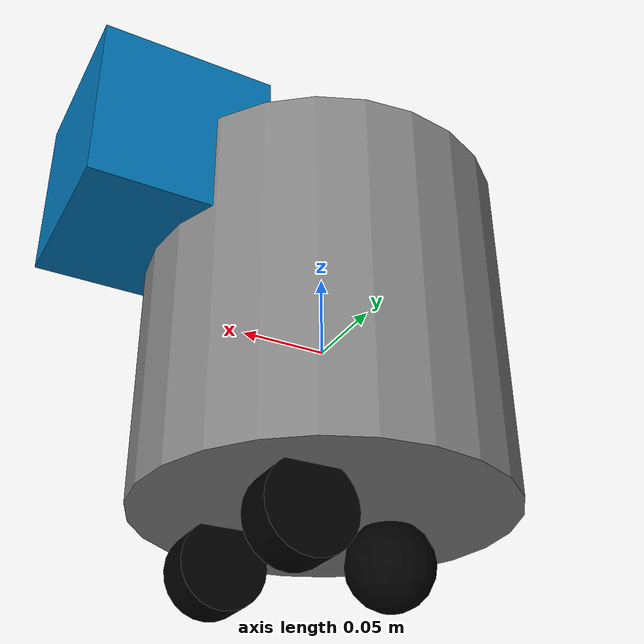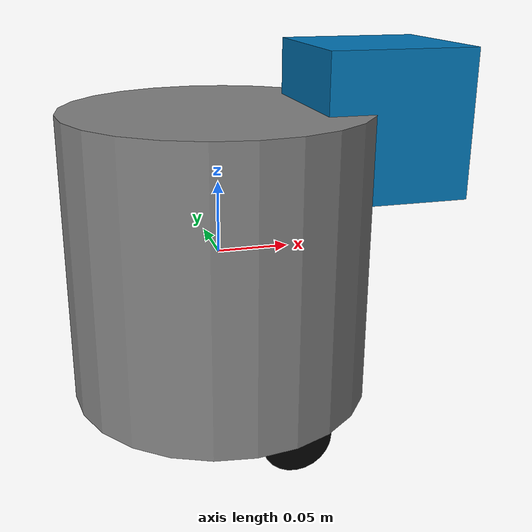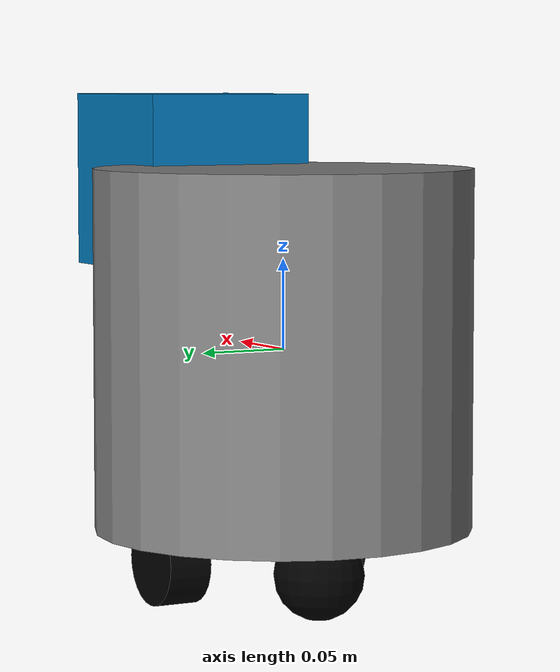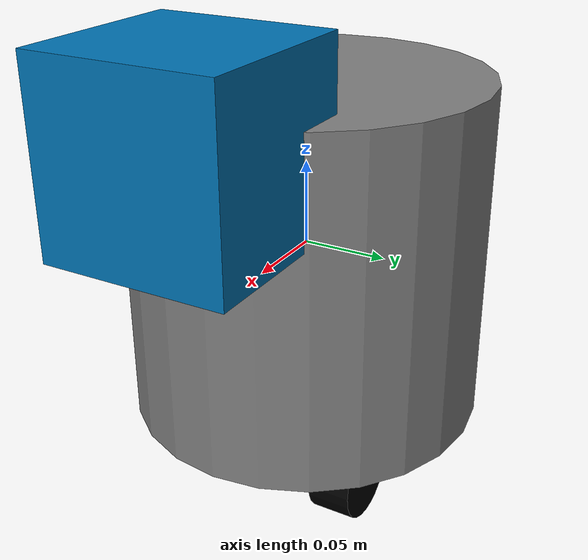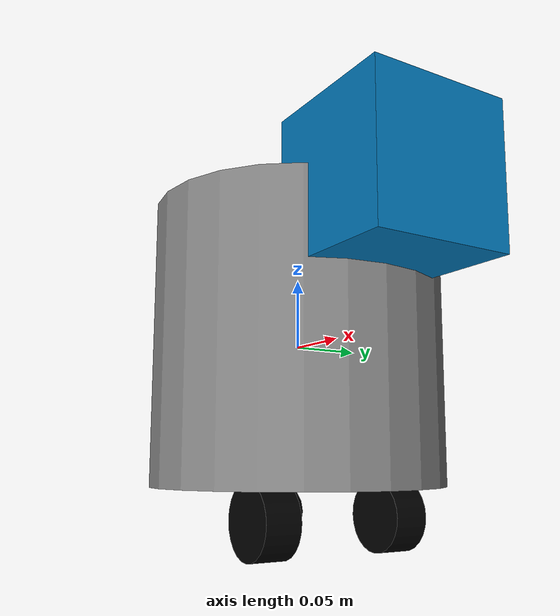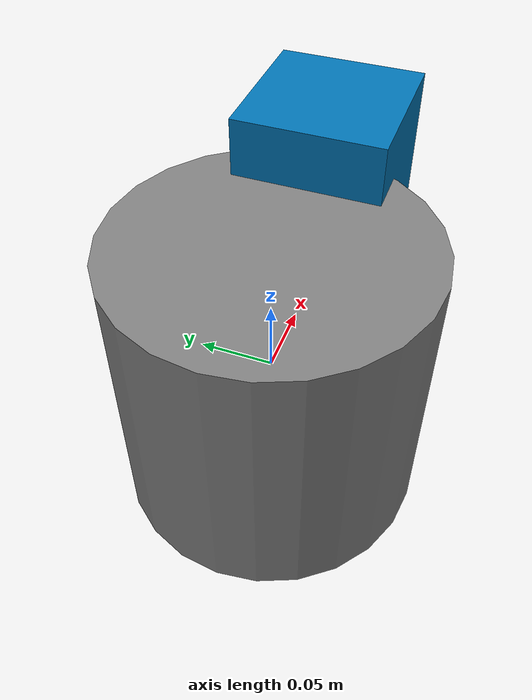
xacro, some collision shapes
<?xml version="1.0" encoding="utf-8"?>
<!-- |    This document was autogenerated by xacro from ../ex00/robot.urdf             | -->
<!-- |    EDITING THIS FILE BY HAND IS NOT RECOMMENDED                                 | -->

<robot name="robot" xmlns:xacro="http://www.ros.org/wiki/xacro">
  <xacro:include filename="$(find robot_diff_drive)/urdf/robot.gazebo.xacro"/>

  <material name="gray">
    <color rgba="0.5 0.5 0.5 1"/>
  </material>

  <material name="black">
    <color rgba="0 0 0 1"/>
  </material>

  <link name="base_link">
    <visual>
      <geometry>
        <cylinder length="0.2" radius="0.105"/>
      </geometry>
      <material name="gray"/>
    </visual>
    <collision>
      <geometry>
        <cylinder length="0.2" radius="0.105"/>
      </geometry>
    </collision>
    <inertial>
      <mass value="2"/>
      <inertia ixx="1.21792" ixy="0.0" ixz="0.0" iyy="1.21792" iyz="0.0" izz="1.1025"/>
    </inertial>
  </link>

  <link name="right_wheel">
    <visual>
      <geometry>
        <cylinder length="0.025" radius="0.025"/>
      </geometry>
      <origin rpy="1.57075 1.57075 0"/>
      <material name="black"/>
    </visual>
    <collision>
      <geometry>
        <cylinder length="0.025" radius="0.025"/>
      </geometry>
      <origin rpy="1.57075 1.57075 0"/>
    </collision>
    <inertial>
      <mu1 value="2.0"/>
      <mu2 value="1.0"/>
      <kp value="10000000.0" />
      <kd value="1.0" />
      <mass value="0.4"/>
      <inertia ixx="0.00833" ixy="0.0" ixz="0.0" iyy="0.00833" iyz="0.0" izz="0.0125"/>
    </inertial>
  </link>

  <joint name="right_wheel_to_base_link" type="continuous">
    <parent link="base_link"/>
    <child link="right_wheel"/>
    <axis xyz="0 1 0"/>
    <origin xyz="0.04 0.05 -0.12"/>
  </joint>

  <transmission name="right_wheel_trans">
    <type>transmission_interface/SimpleTransmission</type>
    <actuator name="right_wheel_motor">
      <mechanicalReduction>1</mechanicalReduction>
    </actuator>
    <joint name="right_wheel_to_base_link">
      <hardwareInterface>hardware_interface/VelocityJointInterface</hardwareInterface>
    </joint>
  </transmission>

  <gazebo reference="right_wheel">
    <mu1 value="2.0"/>
    <mu2 value="1.0"/>
    <kp value="10000000.0" />
    <kd value="1.0" />
    <material>Gazebo/Grey</material>
  </gazebo>

  <link name="left_wheel">
    <visual>
      <geometry>
        <cylinder length="0.025" radius="0.025"/>
      </geometry>
      <origin rpy="1.57075 1.57075 0"/>
      <material name="black"/>
    </visual>
    <collision>
      <geometry>
        <cylinder length="0.025" radius="0.025"/>
      </geometry>
      <origin rpy="1.57075 1.57075 0"/>
    </collision>
    <inertial>
      <mu1 value="2.0"/>
      <mu2 value="1.0"/>
      <kp value="10000000.0" />
      <kd value="1.0" />
      <mass value="0.4"/>
      <inertia ixx="0.00833" ixy="0.0" ixz="0.0" iyy="0.00833" iyz="0.0" izz="0.0125"/>
    </inertial>
  </link>

  <joint name="left_wheel_to_base_link" type="continuous">
    <parent link="base_link"/>
    <child link="left_wheel"/>
    <axis xyz="0 1 0"/>
    <origin xyz="0.04 -0.05 -0.12"/>
  </joint>

  <transmission name="left_wheel_trans">
    <type>transmission_interface/SimpleTransmission</type>
    <actuator name="left_wheel_motor">
      <mechanicalReduction>1</mechanicalReduction>
    </actuator>
    <joint name="left_wheel_to_base_link">
      <hardwareInterface>hardware_interface/VelocityJointInterface</hardwareInterface>
    </joint>
  </transmission>

  <gazebo reference="left_wheel">
    <mu1 value="2.0"/>
    <mu2 value="1.0"/>
    <kp value="10000000.0" />
    <kd value="1.0" />
    <material>Gazebo/Grey</material>
  </gazebo>

  <link name="custer">
    <visual>
      <geometry>
        <sphere radius="0.025"/>
      </geometry>
      <origin rpy="0 0 0"/>
      <material name="black"/>
    </visual>
    <collision>
      <geometry>
        <sphere radius="0.025"/>
      </geometry>
    </collision>
    <inertial>
      <mu1 value="0.01"/>
      <mu2 value="0.01"/>
      <kp value="10000000.0" />
      <kd value="1.0" />
      <mass value="0.5"/>
      <inertia ixx="0.0125" ixy="0.0" ixz="0.0" iyy="0.0125" iyz="0.0" izz="0.0125"/>
    </inertial>
  </link>

  <joint name="custer_to_base_link" type="fixed">
    <parent link="base_link"/>
    <child link="custer"/>
    <origin xyz="-0.04 0.0 -0.12"/>
    <limit effort="1000" velocity="10"/>
  </joint>

  <transmission name="custer_to_base_link_trans">
    <type>transmission_interface/SimpleTransmission</type>
    <actuator name="custer_to_base_link_motor">
      <mechanicalReduction>1</mechanicalReduction>
    </actuator>
    <joint name="custer_to_base_link">
      <hardwareInterface>hardware_interface/PositionJointInterface</hardwareInterface>
    </joint>
  </transmission>

  <gazebo reference="custer">
    <mu1 value="0.01"/>
    <mu2 value="0.01"/>
    <kp value="10000000.0" />
    <kd value="1.0" />
    <material>Gazebo/Grey</material>
  </gazebo>

  <!-- Hokuyo LiDAR -->
  <link name="hokuyo_link">
    <visual>
      <geometry>
        <mesh filename="package://robot_diff_drive/meshes/hokuyo.dae"/>
      </geometry>
    </visual>
    <collision>
      <geometry>
        <box size="0.1 0.1 0.1"/>
      </geometry>
    </collision>
    <inertial>
      <mass value="1e-5"/>
      <inertia ixx="1e-6" ixy="0.0" ixz="0.0" iyy="1e-6" iyz="0.0" izz="1e-6"/>
    </inertial>
  </link>

  <joint name="hokuyo_joint" type="fixed">
    <origin xyz="0.11 0.0 0.09"/>
    <parent link="base_link"/>
    <child link="hokuyo_link"/>
  </joint>

  <gazebo reference="hokuyo_link">
    <sensor type="gpu_ray" name="head_hokuyo_sensor">
      <pose>0 0 0 0 0 0</pose>
      <visualize>false</visualize>
      <update_rate>40</update_rate>
      <ray>
        <scan>
          <horizontal>
            <samples>720</samples>
            <resolution>1</resolution>
            <min_angle>-1.570796</min_angle>
            <max_angle>1.570796</max_angle>
          </horizontal>
        </scan>
        <range>
          <min>0.1</min>
          <max>30.0</max>
          <resolution>0.01</resolution>
        </range>
        <noise>
          <mean>0.0</mean>
          <stddev>0.01</stddev>
        </noise>
      </ray>
      <plugin name="gazebo_ros_head_hokuyo_controller" filename="libgazebo_ros_gpu_laser.so">
        <topicName>/laser/scan</topicName>
        <frameName>hokuyo_link</frameName>
      </plugin>
    </sensor>
  </gazebo>

  <link name="imu_link">
    <inertial>
      <mass value="1e-5"/>
      <inertia ixx="1e-6" ixy="0.0" ixz="0.0" iyy="1e-6" iyz="0.0" izz="1e-6"/>
    </inertial>
  </link>

  <joint name="imu_joint" type="fixed">
    <parent link="base_link"/>
    <child link="imu_link"/>
  </joint>

  <gazebo>
    <plugin name="imu_plugin" filename="libgazebo_ros_imu.so">
      <alwaysOn>true</alwaysOn>
      <bodyName>base_link</bodyName>
      <topicName>imu</topicName>
      <serviceName>imu_service</serviceName>
      <gaussianNoise>0.0</gaussianNoise>
      <updateRate>20.0</updateRate>
    </plugin>
  </gazebo>

  <!-- Gazebo plugin for ROS Control -->
  <gazebo>
    <plugin name="gazebo_ros_control" filename="libgazebo_ros_control.so">
      <robotNamespace>/</robotNamespace>
    </plugin>
  </gazebo>
</robot>
